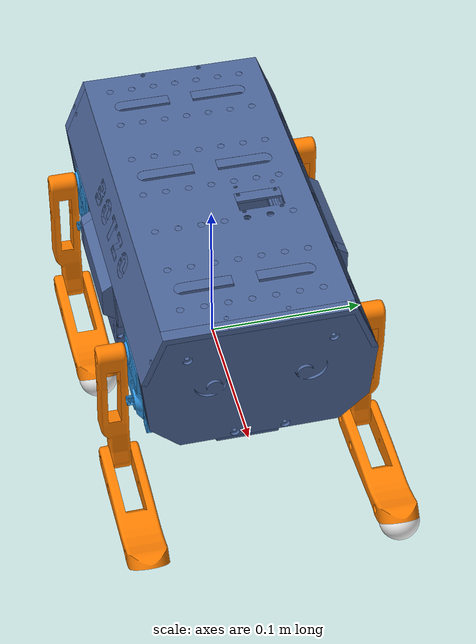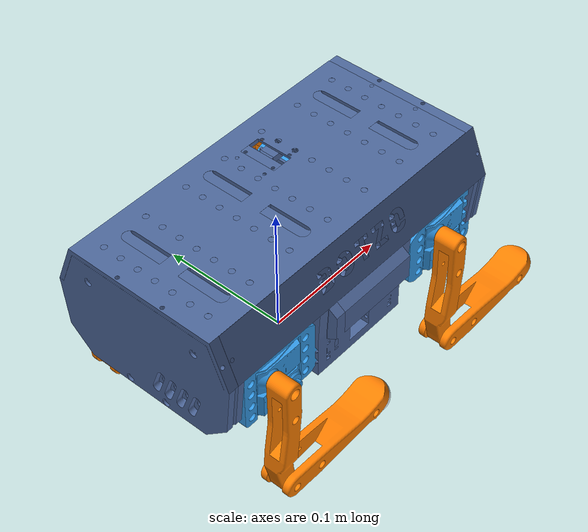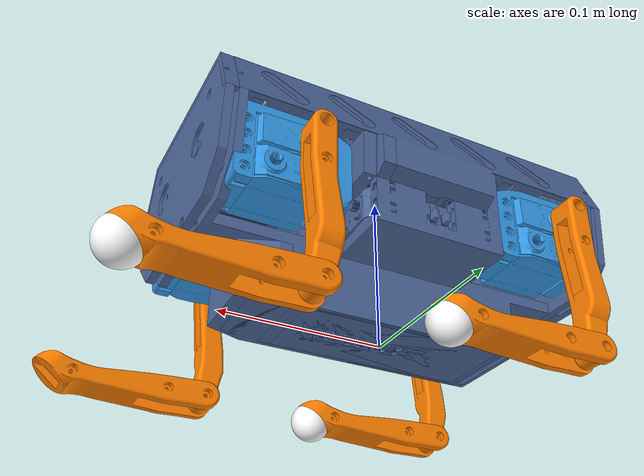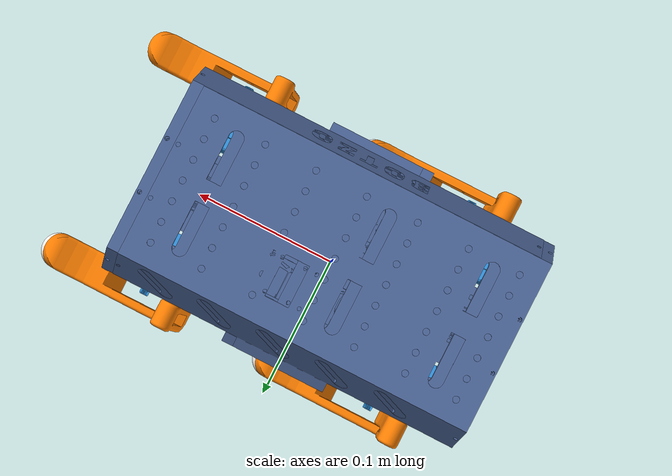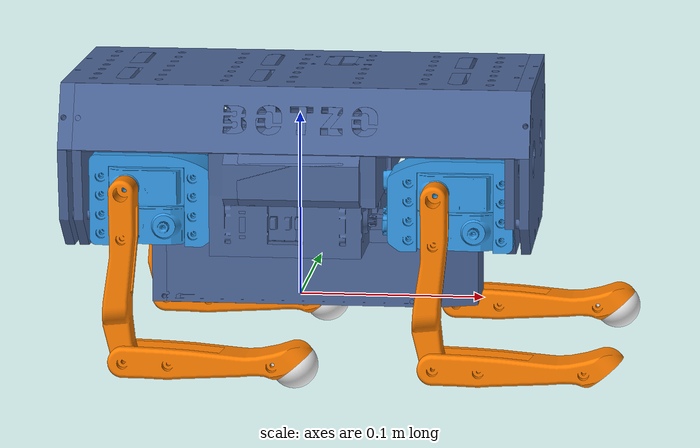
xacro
<?xml version="1.0" ?>
<robot name="BOTZO_URDF" xmlns:xacro="http://www.ros.org/wiki/xacro">

<xacro:include filename="materials.xacro" />
<xacro:include filename="BOTZO_URDF.trans" />
<xacro:include filename="BOTZO_URDF.gazebo" />
<link name="base">
  <inertial>
    <origin xyz="0.009375536855168636 2.60962330403209e-06 0.04112976914849421" rpy="0 0 0"/>
    <mass value="1.2167441545851616"/>
    <inertia ixx="0.001707" iyy="0.003036" izz="0.004645" ixy="-0.0" iyz="0.0" ixz="1e-06"/>
  </inertial>
  <visual>
    <origin xyz="0 0 0" rpy="0 0 0"/>
    <geometry>
      <mesh filename="../meshes/base.stl" scale="0.001 0.001 0.001"/>
    </geometry>
    <material name="body_material"/>
  </visual>
  <collision>
    <origin xyz="0 0 0" rpy="0 0 0"/>
    <geometry>
      <mesh filename="../meshes/base.stl" scale="0.001 0.001 0.001"/>
    </geometry>
  </collision>
</link>

<link name="battery_case">
  <inertial>
    <origin xyz="-0.04833257320080778 -0.021665747040542763 -0.013785580434187983" rpy="0 0 0"/>
    <mass value="0.5279583593554026"/>
    <inertia ixx="0.000303" iyy="0.001576" izz="0.001729" ixy="-0.0" iyz="0.0" ixz="6.3e-05"/>
  </inertial>
  <visual>
    <origin xyz="-0.060442 -0.021666 -0.035" rpy="0 0 0"/>
    <geometry>
      <mesh filename="../meshes/battery_case.stl" scale="0.001 0.001 0.001"/>
    </geometry>
    <material name="body_material"/>
  </visual>
  <collision>
    <origin xyz="-0.060442 -0.021666 -0.035" rpy="0 0 0"/>
    <geometry>
      <mesh filename="../meshes/battery_case.stl" scale="0.001 0.001 0.001"/>
    </geometry>
  </collision>
</link>

<link name="battery_lid">
  <inertial>
    <origin xyz="-0.06437847264634508 0.024434611722595645 -3.256760674206008e-08" rpy="0 0 0"/>
    <mass value="0.27701881208594975"/>
    <inertia ixx="6e-05" iyy="0.000405" izz="0.000464" ixy="-0.0" iyz="0.0" ixz="0.0"/>
  </inertial>
  <visual>
    <origin xyz="-0.063303 0.024621 -0.003002" rpy="0 0 0"/>
    <geometry>
      <mesh filename="../meshes/battery_lid.stl" scale="0.001 0.001 0.001"/>
    </geometry>
    <material name="body_material"/>
  </visual>
  <collision>
    <origin xyz="-0.063303 0.024621 -0.003002" rpy="0 0 0"/>
    <geometry>
      <mesh filename="../meshes/battery_lid.stl" scale="0.001 0.001 0.001"/>
    </geometry>
  </collision>
</link>

<link name="FL_hip_servo">
  <inertial>
    <origin xyz="-0.010978826420354432 0.024635560993822213 0.004999993099930565" rpy="0 0 0"/>
    <mass value="0.26173993659313904"/>
    <inertia ixx="4.6e-05" iyy="4.4e-05" izz="7.2e-05" ixy="0.0" iyz="-0.0" ixz="-0.0"/>
  </inertial>
  <visual>
    <origin xyz="-0.039798 0.0679 -0.0472" rpy="0 0 0"/>
    <geometry>
      <mesh filename="../meshes/FL_hip_servo.stl" scale="0.001 0.001 0.001"/>
    </geometry>
    <material name="body_material"/>
  </visual>
  <collision>
    <origin xyz="-0.039798 0.0679 -0.0472" rpy="0 0 0"/>
    <geometry>
      <mesh filename="../meshes/FL_hip_servo.stl" scale="0.001 0.001 0.001"/>
    </geometry>
  </collision>
</link>

<link name="BL_hip_servo">
  <inertial>
    <origin xyz="0.010978566432420041 0.024635553472565068 0.004999993096986129" rpy="0 0 0"/>
    <mass value="0.2617400478829367"/>
    <inertia ixx="4.6e-05" iyy="4.4e-05" izz="7.2e-05" ixy="-0.0" iyz="-0.0" ixz="-0.0"/>
  </inertial>
  <visual>
    <origin xyz="0.024303 0.0679 -0.0472" rpy="0 0 0"/>
    <geometry>
      <mesh filename="../meshes/BL_hip_servo.stl" scale="0.001 0.001 0.001"/>
    </geometry>
    <material name="body_material"/>
  </visual>
  <collision>
    <origin xyz="0.024303 0.0679 -0.0472" rpy="0 0 0"/>
    <geometry>
      <mesh filename="../meshes/BL_hip_servo.stl" scale="0.001 0.001 0.001"/>
    </geometry>
  </collision>
</link>

<link name="BR_hip_servo">
  <inertial>
    <origin xyz="0.010978566432483449 -0.02463554393590102 0.005000000088002207" rpy="0 0 0"/>
    <mass value="0.2617400478829346"/>
    <inertia ixx="4.6e-05" iyy="4.4e-05" izz="7.2e-05" ixy="0.0" iyz="0.0" ixz="-0.0"/>
  </inertial>
  <visual>
    <origin xyz="0.024303 -0.0679 -0.0472" rpy="0 0 0"/>
    <geometry>
      <mesh filename="../meshes/BR_hip_servo.stl" scale="0.001 0.001 0.001"/>
    </geometry>
    <material name="body_material"/>
  </visual>
  <collision>
    <origin xyz="0.024303 -0.0679 -0.0472" rpy="0 0 0"/>
    <geometry>
      <mesh filename="../meshes/BR_hip_servo.stl" scale="0.001 0.001 0.001"/>
    </geometry>
  </collision>
</link>

<link name="FR_hip_servo">
  <inertial>
    <origin xyz="-0.010978819400829183 -0.02463554393111611 0.005000000090946616" rpy="0 0 0"/>
    <mass value="0.26174004794177985"/>
    <inertia ixx="4.6e-05" iyy="4.4e-05" izz="7.2e-05" ixy="-0.0" iyz="0.0" ixz="-0.0"/>
  </inertial>
  <visual>
    <origin xyz="-0.039798 -0.0679 -0.0472" rpy="0 0 0"/>
    <geometry>
      <mesh filename="../meshes/FR_hip_servo.stl" scale="0.001 0.001 0.001"/>
    </geometry>
    <material name="body_material"/>
  </visual>
  <collision>
    <origin xyz="-0.039798 -0.0679 -0.0472" rpy="0 0 0"/>
    <geometry>
      <mesh filename="../meshes/FR_hip_servo.stl" scale="0.001 0.001 0.001"/>
    </geometry>
  </collision>
</link>

<link name="LH_HIP">
  <inertial>
    <origin xyz="-0.0033823271841275857 1.4796413910361794e-05 0.007872333848179133" rpy="0 0 0"/>
    <mass value="0.009507508379080121"/>
    <inertia ixx="1e-06" iyy="1e-06" izz="0.0" ixy="-0.0" iyz="-0.0" ixz="0.0"/>
  </inertial>
  <visual>
    <origin xyz="0.034903 -0.0531 -0.0522" rpy="0 0 0"/>
    <geometry>
      <mesh filename="../meshes/LH_HIP.stl" scale="0.001 0.001 0.001"/>
    </geometry>
    <material name="shoulder_material"/>
  </visual>
  <collision>
    <origin xyz="0.034903 -0.0531 -0.0522" rpy="0 0 0"/>
    <geometry>
      <mesh filename="../meshes/LH_HIP.stl" scale="0.001 0.001 0.001"/>
    </geometry>
  </collision>
</link>

<link name="RH_HIP">
  <inertial>
    <origin xyz="-0.0033823296605766523 -1.480449380279747e-05 0.00787237940155594" rpy="0 0 0"/>
    <mass value="0.009507457536661807"/>
    <inertia ixx="1e-06" iyy="1e-06" izz="0.0" ixy="0.0" iyz="0.0" ixz="0.0"/>
  </inertial>
  <visual>
    <origin xyz="0.034903 0.0531 -0.0522" rpy="0 0 0"/>
    <geometry>
      <mesh filename="../meshes/RH_HIP.stl" scale="0.001 0.001 0.001"/>
    </geometry>
    <material name="shoulder_material"/>
  </visual>
  <collision>
    <origin xyz="0.034903 0.0531 -0.0522" rpy="0 0 0"/>
    <geometry>
      <mesh filename="../meshes/RH_HIP.stl" scale="0.001 0.001 0.001"/>
    </geometry>
  </collision>
</link>

<link name="RF_HIP">
  <inertial>
    <origin xyz="0.003382077615074093 1.4787446472486199e-05 0.007872350264379872" rpy="0 0 0"/>
    <mass value="0.009507493907444358"/>
    <inertia ixx="1e-06" iyy="1e-06" izz="0.0" ixy="0.0" iyz="-0.0" ixz="-0.0"/>
  </inertial>
  <visual>
    <origin xyz="-0.050398 0.0531 -0.0522" rpy="0 0 0"/>
    <geometry>
      <mesh filename="../meshes/RF_HIP.stl" scale="0.001 0.001 0.001"/>
    </geometry>
    <material name="shoulder_material"/>
  </visual>
  <collision>
    <origin xyz="-0.050398 0.0531 -0.0522" rpy="0 0 0"/>
    <geometry>
      <mesh filename="../meshes/RF_HIP.stl" scale="0.001 0.001 0.001"/>
    </geometry>
  </collision>
</link>

<link name="LF_HIP">
  <inertial>
    <origin xyz="0.0033820809457219755 -1.45680062756115e-05 0.007871874279300785" rpy="0 0 0"/>
    <mass value="0.009507835913863746"/>
    <inertia ixx="1e-06" iyy="1e-06" izz="0.0" ixy="-0.0" iyz="0.0" ixz="-0.0"/>
  </inertial>
  <visual>
    <origin xyz="-0.050398 -0.0531 -0.0522" rpy="0 0 0"/>
    <geometry>
      <mesh filename="../meshes/LF_HIP.stl" scale="0.001 0.001 0.001"/>
    </geometry>
    <material name="shoulder_material"/>
  </visual>
  <collision>
    <origin xyz="-0.050398 -0.0531 -0.0522" rpy="0 0 0"/>
    <geometry>
      <mesh filename="../meshes/LF_HIP.stl" scale="0.001 0.001 0.001"/>
    </geometry>
  </collision>
</link>

<link name="FR_hip_holder">
  <inertial>
    <origin xyz="0.029560698455582325 -0.0006139250348962816 -0.005293910274418584" rpy="0 0 0"/>
    <mass value="0.2739065893365788"/>
    <inertia ixx="8.1e-05" iyy="0.000224" izz="0.000184" ixy="1e-06" iyz="-1e-06" ixz="-1.2e-05"/>
  </inertial>
  <visual>
    <origin xyz="-0.056398 -0.0531 -0.0722" rpy="0 0 0"/>
    <geometry>
      <mesh filename="../meshes/FR_hip_holder.stl" scale="0.001 0.001 0.001"/>
    </geometry>
    <material name="shoulder_material"/>
  </visual>
  <collision>
    <origin xyz="-0.056398 -0.0531 -0.0722" rpy="0 0 0"/>
    <geometry>
      <mesh filename="../meshes/FR_hip_holder.stl" scale="0.001 0.001 0.001"/>
    </geometry>
  </collision>
</link>

<link name="FL_hip_holder">
  <inertial>
    <origin xyz="0.029560702894754244 0.0006139344660216831 -0.005293914635593616" rpy="0 0 0"/>
    <mass value="0.2739065316373336"/>
    <inertia ixx="8.1e-05" iyy="0.000224" izz="0.000184" ixy="-1e-06" iyz="1e-06" ixz="-1.2e-05"/>
  </inertial>
  <visual>
    <origin xyz="-0.056398 0.0531 -0.0722" rpy="0 0 0"/>
    <geometry>
      <mesh filename="../meshes/FL_hip_holder.stl" scale="0.001 0.001 0.001"/>
    </geometry>
    <material name="shoulder_material"/>
  </visual>
  <collision>
    <origin xyz="-0.056398 0.0531 -0.0722" rpy="0 0 0"/>
    <geometry>
      <mesh filename="../meshes/FL_hip_holder.stl" scale="0.001 0.001 0.001"/>
    </geometry>
  </collision>
</link>

<link name="BR_hip_holder">
  <inertial>
    <origin xyz="-0.029567418713488176 -0.0006140698430923894 -0.005290300978496018" rpy="0 0 0"/>
    <mass value="0.2738404315973338"/>
    <inertia ixx="8.1e-05" iyy="0.000224" izz="0.000184" ixy="-1e-06" iyz="-1e-06" ixz="1.2e-05"/>
  </inertial>
  <visual>
    <origin xyz="0.040903 -0.0531 -0.0722" rpy="0 0 0"/>
    <geometry>
      <mesh filename="../meshes/BR_hip_holder.stl" scale="0.001 0.001 0.001"/>
    </geometry>
    <material name="shoulder_material"/>
  </visual>
  <collision>
    <origin xyz="0.040903 -0.0531 -0.0722" rpy="0 0 0"/>
    <geometry>
      <mesh filename="../meshes/BR_hip_holder.stl" scale="0.001 0.001 0.001"/>
    </geometry>
  </collision>
</link>

<link name="BL_hip_holder">
  <inertial>
    <origin xyz="-0.02956749620152093 0.0006140814047106841 -0.005290344095366009" rpy="0 0 0"/>
    <mass value="0.27383943853852916"/>
    <inertia ixx="8.1e-05" iyy="0.000224" izz="0.000184" ixy="1e-06" iyz="1e-06" ixz="1.2e-05"/>
  </inertial>
  <visual>
    <origin xyz="0.040903 0.0531 -0.0722" rpy="0 0 0"/>
    <geometry>
      <mesh filename="../meshes/BL_hip_holder.stl" scale="0.001 0.001 0.001"/>
    </geometry>
    <material name="shoulder_material"/>
  </visual>
  <collision>
    <origin xyz="0.040903 0.0531 -0.0722" rpy="0 0 0"/>
    <geometry>
      <mesh filename="../meshes/BL_hip_holder.stl" scale="0.001 0.001 0.001"/>
    </geometry>
  </collision>
</link>

<link name="BL_femur_servo">
  <inertial>
    <origin xyz="-0.024964370616050904 0.010978365390125422 0.004999649993067221" rpy="0 0 0"/>
    <mass value="0.2617400479417799"/>
    <inertia ixx="4.4e-05" iyy="4.6e-05" izz="7.2e-05" ixy="-0.0" iyz="0.0" ixz="-0.0"/>
  </inertial>
  <visual>
    <origin xyz="0.049276 0.0613 -0.066121" rpy="0 0 0"/>
    <geometry>
      <mesh filename="../meshes/BL_femur_servo.stl" scale="0.001 0.001 0.001"/>
    </geometry>
    <material name="shoulder_material"/>
  </visual>
  <collision>
    <origin xyz="0.049276 0.0613 -0.066121" rpy="0 0 0"/>
    <geometry>
      <mesh filename="../meshes/BL_femur_servo.stl" scale="0.001 0.001 0.001"/>
    </geometry>
  </collision>
</link>

<link name="BL_tibia_servo">
  <inertial>
    <origin xyz="-0.02463534146393219 0.010978408940392835 0.0049996411984006145" rpy="0 0 0"/>
    <mass value="0.26173858999953525"/>
    <inertia ixx="4.4e-05" iyy="4.6e-05" izz="7.2e-05" ixy="0.0" iyz="-0.0" ixz="-0.0"/>
  </inertial>
  <visual>
    <origin xyz="0.049276 0.0613 -0.045621" rpy="0 0 0"/>
    <geometry>
      <mesh filename="../meshes/BL_tibia_servo.stl" scale="0.001 0.001 0.001"/>
    </geometry>
    <material name="shoulder_material"/>
  </visual>
  <collision>
    <origin xyz="0.049276 0.0613 -0.045621" rpy="0 0 0"/>
    <geometry>
      <mesh filename="../meshes/BL_tibia_servo.stl" scale="0.001 0.001 0.001"/>
    </geometry>
  </collision>
</link>

<link name="BR_femur_servo">
  <inertial>
    <origin xyz="-0.024964370616009382 -0.010978355853619524 0.004999656984075548" rpy="0 0 0"/>
    <mass value="0.26174004794177985"/>
    <inertia ixx="4.4e-05" iyy="4.6e-05" izz="7.2e-05" ixy="0.0" iyz="-0.0" ixz="-0.0"/>
  </inertial>
  <visual>
    <origin xyz="0.049276 -0.0613 -0.066121" rpy="0 0 0"/>
    <geometry>
      <mesh filename="../meshes/BR_femur_servo.stl" scale="0.001 0.001 0.001"/>
    </geometry>
    <material name="shoulder_material"/>
  </visual>
  <collision>
    <origin xyz="0.049276 -0.0613 -0.066121" rpy="0 0 0"/>
    <geometry>
      <mesh filename="../meshes/BR_femur_servo.stl" scale="0.001 0.001 0.001"/>
    </geometry>
  </collision>
</link>

<link name="BR_tibia_servo">
  <inertial>
    <origin xyz="-0.0246353414638866 -0.010978399403886119 0.004999648189409005" rpy="0 0 0"/>
    <mass value="0.2617385899995351"/>
    <inertia ixx="4.4e-05" iyy="4.6e-05" izz="7.2e-05" ixy="-0.0" iyz="0.0" ixz="-0.0"/>
  </inertial>
  <visual>
    <origin xyz="0.049276 -0.0613 -0.045621" rpy="0 0 0"/>
    <geometry>
      <mesh filename="../meshes/BR_tibia_servo.stl" scale="0.001 0.001 0.001"/>
    </geometry>
    <material name="shoulder_material"/>
  </visual>
  <collision>
    <origin xyz="0.049276 -0.0613 -0.045621" rpy="0 0 0"/>
    <geometry>
      <mesh filename="../meshes/BR_tibia_servo.stl" scale="0.001 0.001 0.001"/>
    </geometry>
  </collision>
</link>

<link name="FL_femur_servo">
  <inertial>
    <origin xyz="0.024635236782420036 0.010978365390344982 0.004999645985760567" rpy="0 0 0"/>
    <mass value="0.2617400479417799"/>
    <inertia ixx="4.4e-05" iyy="4.6e-05" izz="7.2e-05" ixy="-0.0" iyz="0.0" ixz="-0.0"/>
  </inertial>
  <visual>
    <origin xyz="-0.064771 0.0613 -0.066121" rpy="0 0 0"/>
    <geometry>
      <mesh filename="../meshes/FL_femur_servo.stl" scale="0.001 0.001 0.001"/>
    </geometry>
    <material name="shoulder_material"/>
  </visual>
  <collision>
    <origin xyz="-0.064771 0.0613 -0.066121" rpy="0 0 0"/>
    <geometry>
      <mesh filename="../meshes/FL_femur_servo.stl" scale="0.001 0.001 0.001"/>
    </geometry>
  </collision>
</link>

<link name="FL_tibia_servo">
  <inertial>
    <origin xyz="0.024964033753852463 0.010978390052187453 0.004999641006598471" rpy="0 0 0"/>
    <mass value="0.261739222329772"/>
    <inertia ixx="4.4e-05" iyy="4.6e-05" izz="7.2e-05" ixy="0.0" iyz="-0.0" ixz="0.0"/>
  </inertial>
  <visual>
    <origin xyz="-0.064771 0.0613 -0.045621" rpy="0 0 0"/>
    <geometry>
      <mesh filename="../meshes/FL_tibia_servo.stl" scale="0.001 0.001 0.001"/>
    </geometry>
    <material name="shoulder_material"/>
  </visual>
  <collision>
    <origin xyz="-0.064771 0.0613 -0.045621" rpy="0 0 0"/>
    <geometry>
      <mesh filename="../meshes/FL_tibia_servo.stl" scale="0.001 0.001 0.001"/>
    </geometry>
  </collision>
</link>

<link name="FR_femur_servo">
  <inertial>
    <origin xyz="0.02463523678246525 -0.010978355853581062 0.004999652976776514" rpy="0 0 0"/>
    <mass value="0.26174004794177985"/>
    <inertia ixx="4.4e-05" iyy="4.6e-05" izz="7.2e-05" ixy="0.0" iyz="-0.0" ixz="-0.0"/>
  </inertial>
  <visual>
    <origin xyz="-0.064771 -0.0613 -0.066121" rpy="0 0 0"/>
    <geometry>
      <mesh filename="../meshes/FR_femur_servo.stl" scale="0.001 0.001 0.001"/>
    </geometry>
    <material name="shoulder_material"/>
  </visual>
  <collision>
    <origin xyz="-0.064771 -0.0613 -0.066121" rpy="0 0 0"/>
    <geometry>
      <mesh filename="../meshes/FR_femur_servo.stl" scale="0.001 0.001 0.001"/>
    </geometry>
  </collision>
</link>

<link name="FR_tibia_servo">
  <inertial>
    <origin xyz="0.024964033753897955 -0.010978380515422506 0.004999647997614584" rpy="0 0 0"/>
    <mass value="0.2617392223297719"/>
    <inertia ixx="4.4e-05" iyy="4.6e-05" izz="7.2e-05" ixy="-0.0" iyz="0.0" ixz="0.0"/>
  </inertial>
  <visual>
    <origin xyz="-0.064771 -0.0613 -0.045621" rpy="0 0 0"/>
    <geometry>
      <mesh filename="../meshes/FR_tibia_servo.stl" scale="0.001 0.001 0.001"/>
    </geometry>
    <material name="shoulder_material"/>
  </visual>
  <collision>
    <origin xyz="-0.064771 -0.0613 -0.045621" rpy="0 0 0"/>
    <geometry>
      <mesh filename="../meshes/FR_tibia_servo.stl" scale="0.001 0.001 0.001"/>
    </geometry>
  </collision>
</link>

<link name="imu_link">
  <inertial>
    <origin xyz="3.683803719701888e-07 7.62933245468389e-09 0.00049999999999846" rpy="0 0 0"/>
    <mass value="0.0026375999999999986"/>
    <inertia ixx="0.0" iyy="0.0" izz="0.0" ixy="-0.0" iyz="0.0" ixz="0.0"/>
  </inertial>
  <visual>
    <origin xyz="-0.003497 -0.0 -0.0395" rpy="0 0 0"/>
    <geometry>
      <mesh filename="../meshes/imu_link.stl" scale="0.001 0.001 0.001"/>
    </geometry>
    <material name="body_material"/>
  </visual>
  <collision>
    <origin xyz="-0.003497 -0.0 -0.0395" rpy="0 0 0"/>
    <geometry>
      <mesh filename="../meshes/imu_link.stl" scale="0.001 0.001 0.001"/>
    </geometry>
  </collision>
</link>

<link name="LF_THIGH">
  <inertial>
    <origin xyz="-0.0015487128805810324 0.00818635524879402 -0.046699032368199875" rpy="0 0 0"/>
    <mass value="0.12321527244392107"/>
    <inertia ixx="0.000112" iyy="0.000111" izz="6e-06" ixy="-0.0" iyz="-2e-06" ixz="-4e-06"/>
  </inertial>
  <visual>
    <origin xyz="-0.079571 -0.0719 -0.071121" rpy="0 0 0"/>
    <geometry>
      <mesh filename="../meshes/LF_THIGH.stl" scale="0.001 0.001 0.001"/>
    </geometry>
    <material name="legs_material"/>
  </visual>
  <collision>
    <origin xyz="-0.079571 -0.0719 -0.071121" rpy="0 0 0"/>
    <geometry>
      <mesh filename="../meshes/LF_THIGH.stl" scale="0.001 0.001 0.001"/>
    </geometry>
  </collision>
</link>

<link name="RF_THIGH">
  <inertial>
    <origin xyz="-0.001548689561858288 -0.00818632723111587 -0.04669919641913074" rpy="0 0 0"/>
    <mass value="0.1232160348472257"/>
    <inertia ixx="0.000112" iyy="0.000111" izz="6e-06" ixy="0.0" iyz="2e-06" ixz="-4e-06"/>
  </inertial>
  <visual>
    <origin xyz="-0.079571 0.0719 -0.071121" rpy="0 0 0"/>
    <geometry>
      <mesh filename="../meshes/RF_THIGH.stl" scale="0.001 0.001 0.001"/>
    </geometry>
    <material name="legs_material"/>
  </visual>
  <collision>
    <origin xyz="-0.079571 0.0719 -0.071121" rpy="0 0 0"/>
    <geometry>
      <mesh filename="../meshes/RF_THIGH.stl" scale="0.001 0.001 0.001"/>
    </geometry>
  </collision>
</link>

<link name="RH_THIGH">
  <inertial>
    <origin xyz="-0.0015481950136371492 -0.008186327231335055 -0.046697922551068013" rpy="0 0 0"/>
    <mass value="0.1232160348472388"/>
    <inertia ixx="0.000112" iyy="0.000111" izz="6e-06" ixy="0.0" iyz="2e-06" ixz="-4e-06"/>
  </inertial>
  <visual>
    <origin xyz="0.084076 0.0719 -0.071121" rpy="0 0 0"/>
    <geometry>
      <mesh filename="../meshes/RH_THIGH.stl" scale="0.001 0.001 0.001"/>
    </geometry>
    <material name="legs_material"/>
  </visual>
  <collision>
    <origin xyz="0.084076 0.0719 -0.071121" rpy="0 0 0"/>
    <geometry>
      <mesh filename="../meshes/RH_THIGH.stl" scale="0.001 0.001 0.001"/>
    </geometry>
  </collision>
</link>

<link name="LH_THIGH">
  <inertial>
    <origin xyz="-0.0015481437644144225 0.008186355248752455 -0.0466975963630347" rpy="0 0 0"/>
    <mass value="0.12321527244393736"/>
    <inertia ixx="0.000113" iyy="0.000111" izz="6e-06" ixy="-0.0" iyz="-2e-06" ixz="-4e-06"/>
  </inertial>
  <visual>
    <origin xyz="0.084076 -0.0719 -0.071121" rpy="0 0 0"/>
    <geometry>
      <mesh filename="../meshes/LH_THIGH.stl" scale="0.001 0.001 0.001"/>
    </geometry>
    <material name="legs_material"/>
  </visual>
  <collision>
    <origin xyz="0.084076 -0.0719 -0.071121" rpy="0 0 0"/>
    <geometry>
      <mesh filename="../meshes/LH_THIGH.stl" scale="0.001 0.001 0.001"/>
    </geometry>
  </collision>
</link>

<link name="plaque_left">
  <inertial>
    <origin xyz="0.014393569624221867 -0.02888533887184032 0.007166851005990391" rpy="0 0 0"/>
    <mass value="0.2650412288141514"/>
    <inertia ixx="0.000113" iyy="0.000207" izz="0.000285" ixy="0.0" iyz="8e-06" ixz="0.0"/>
  </inertial>
  <visual>
    <origin xyz="0.00664 0.018475 -0.0624" rpy="0 0 0"/>
    <geometry>
      <mesh filename="../meshes/plaque_left.stl" scale="0.001 0.001 0.001"/>
    </geometry>
    <material name="body_material"/>
  </visual>
  <collision>
    <origin xyz="0.00664 0.018475 -0.0624" rpy="0 0 0"/>
    <geometry>
      <mesh filename="../meshes/plaque_left.stl" scale="0.001 0.001 0.001"/>
    </geometry>
  </collision>
</link>

<link name="plaque_right">
  <inertial>
    <origin xyz="0.01437999212800966 0.028910459753787983 0.007144962390201057" rpy="0 0 0"/>
    <mass value="0.2662946576400111"/>
    <inertia ixx="0.000113" iyy="0.000208" izz="0.000286" ixy="-0.0" iyz="-8e-06" ixz="-0.0"/>
  </inertial>
  <visual>
    <origin xyz="0.00664 -0.018475 -0.0624" rpy="0 0 0"/>
    <geometry>
      <mesh filename="../meshes/plaque_right.stl" scale="0.001 0.001 0.001"/>
    </geometry>
    <material name="body_material"/>
  </visual>
  <collision>
    <origin xyz="0.00664 -0.018475 -0.0624" rpy="0 0 0"/>
    <geometry>
      <mesh filename="../meshes/plaque_right.stl" scale="0.001 0.001 0.001"/>
    </geometry>
  </collision>
</link>

<link name="rear">
  <inertial>
    <origin xyz="-0.002467088490467728 0.01679061879749418 0.03991220570023193" rpy="0 0 0"/>
    <mass value="0.4112027073712677"/>
    <inertia ixx="0.000826" iyy="0.000229" izz="0.000599" ixy="0.0" iyz="1.1e-05" ixz="0.0"/>
  </inertial>
  <visual>
    <origin xyz="0.107742 0.015621 -0.0385" rpy="0 0 0"/>
    <geometry>
      <mesh filename="../meshes/rear.stl" scale="0.001 0.001 0.001"/>
    </geometry>
    <material name="body_material"/>
  </visual>
  <collision>
    <origin xyz="0.107742 0.015621 -0.0385" rpy="0 0 0"/>
    <geometry>
      <mesh filename="../meshes/rear.stl" scale="0.001 0.001 0.001"/>
    </geometry>
  </collision>
</link>

<link name="face">
  <inertial>
    <origin xyz="0.0024414347125266272 0.015621074926330704 0.03876987732727693" rpy="0 0 0"/>
    <mass value="0.42237332709158726"/>
    <inertia ixx="0.000844" iyy="0.000239" izz="0.000607" ixy="0.0" iyz="-0.0" ixz="-0.0"/>
  </inertial>
  <visual>
    <origin xyz="-0.123238 0.015621 -0.0385" rpy="0 0 0"/>
    <geometry>
      <mesh filename="../meshes/face.stl" scale="0.001 0.001 0.001"/>
    </geometry>
    <material name="body_material"/>
  </visual>
  <collision>
    <origin xyz="-0.123238 0.015621 -0.0385" rpy="0 0 0"/>
    <geometry>
      <mesh filename="../meshes/face.stl" scale="0.001 0.001 0.001"/>
    </geometry>
  </collision>
</link>

<link name="internal_infra">
  <inertial>
    <origin xyz="0.11530993699758461 0.044680485707850826 -0.007028415436090132" rpy="0 0 0"/>
    <mass value="0.29688366953182493"/>
    <inertia ixx="0.000331" iyy="0.001813" izz="0.002141" ixy="0.0" iyz="1e-06" ixz="0.0"/>
  </inertial>
  <visual>
    <origin xyz="0.107742 0.043961 -0.105071" rpy="0 0 0"/>
    <geometry>
      <mesh filename="../meshes/internal_infra.stl" scale="0.001 0.001 0.001"/>
    </geometry>
    <material name="body_material"/>
  </visual>
  <collision>
    <origin xyz="0.107742 0.043961 -0.105071" rpy="0 0 0"/>
    <geometry>
      <mesh filename="../meshes/internal_infra.stl" scale="0.001 0.001 0.001"/>
    </geometry>
  </collision>
</link>

<link name="top">
  <inertial>
    <origin xyz="0.11761953860342345 -0.06398448625003379 0.011181156410446563" rpy="0 0 0"/>
    <mass value="1.1154165815498167"/>
    <inertia ixx="0.002509" iyy="0.005671" izz="0.007973" ixy="3.8e-05" iyz="-2.2e-05" ixz="-3e-06"/>
  </inertial>
  <visual>
    <origin xyz="0.110242 -0.0616 -0.105415" rpy="0 0 0"/>
    <geometry>
      <mesh filename="../meshes/top.stl" scale="0.001 0.001 0.001"/>
    </geometry>
    <material name="body_material"/>
  </visual>
  <collision>
    <origin xyz="0.110242 -0.0616 -0.105415" rpy="0 0 0"/>
    <geometry>
      <mesh filename="../meshes/top.stl" scale="0.001 0.001 0.001"/>
    </geometry>
  </collision>
</link>

<link name="RF_SHANK">
  <inertial>
    <origin xyz="-1.3426662960558389e-05 0.006598316213941233 -0.04761054175330333" rpy="0 0 0"/>
    <mass value="0.16449882147273556"/>
    <inertia ixx="0.000143" iyy="0.000134" izz="1.5e-05" ixy="-0.0" iyz="0.0" ixz="3e-06"/>
  </inertial>
  <visual>
    <origin xyz="-0.079571 0.0849 0.019458" rpy="0 0 0"/>
    <geometry>
      <mesh filename="../meshes/RF_SHANK.stl" scale="0.001 0.001 0.001"/>
    </geometry>
    <material name="legs_material"/>
  </visual>
  <collision>
    <origin xyz="-0.079571 0.0849 0.019458" rpy="0 0 0"/>
    <geometry>
      <mesh filename="../meshes/RF_SHANK.stl" scale="0.001 0.001 0.001"/>
    </geometry>
  </collision>
</link>

<link name="RH_SHANK">
  <inertial>
    <origin xyz="-1.3034061444691658e-05 0.00659831600262395 -0.04761053774599561" rpy="0 0 0"/>
    <mass value="0.16449882147273576"/>
    <inertia ixx="0.000143" iyy="0.000134" izz="1.5e-05" ixy="-0.0" iyz="0.0" ixz="3e-06"/>
  </inertial>
  <visual>
    <origin xyz="0.084076 0.0849 0.019458" rpy="0 0 0"/>
    <geometry>
      <mesh filename="../meshes/RH_SHANK.stl" scale="0.001 0.001 0.001"/>
    </geometry>
    <material name="legs_material"/>
  </visual>
  <collision>
    <origin xyz="0.084076 0.0849 0.019458" rpy="0 0 0"/>
    <geometry>
      <mesh filename="../meshes/RH_SHANK.stl" scale="0.001 0.001 0.001"/>
    </geometry>
  </collision>
</link>

<link name="LF_SHANK">
  <inertial>
    <origin xyz="-1.3423486317318267e-05 -0.006598286312571797 -0.047610458897788074" rpy="0 0 0"/>
    <mass value="0.16449852643699206"/>
    <inertia ixx="0.000143" iyy="0.000134" izz="1.5e-05" ixy="0.0" iyz="-0.0" ixz="3e-06"/>
  </inertial>
  <visual>
    <origin xyz="-0.079571 -0.0849 0.019458" rpy="0 0 0"/>
    <geometry>
      <mesh filename="../meshes/LF_SHANK.stl" scale="0.001 0.001 0.001"/>
    </geometry>
    <material name="legs_material"/>
  </visual>
  <collision>
    <origin xyz="-0.079571 -0.0849 0.019458" rpy="0 0 0"/>
    <geometry>
      <mesh filename="../meshes/LF_SHANK.stl" scale="0.001 0.001 0.001"/>
    </geometry>
  </collision>
</link>

<link name="LH_SHANK">
  <inertial>
    <origin xyz="-1.3030884784909214e-05 -0.006598286101516498 -0.0476104548904905" rpy="0 0 0"/>
    <mass value="0.164498526436992"/>
    <inertia ixx="0.000143" iyy="0.000134" izz="1.5e-05" ixy="0.0" iyz="-0.0" ixz="3e-06"/>
  </inertial>
  <visual>
    <origin xyz="0.084076 -0.0849 0.019458" rpy="0 0 0"/>
    <geometry>
      <mesh filename="../meshes/LH_SHANK.stl" scale="0.001 0.001 0.001"/>
    </geometry>
    <material name="legs_material"/>
  </visual>
  <collision>
    <origin xyz="0.084076 -0.0849 0.019458" rpy="0 0 0"/>
    <geometry>
      <mesh filename="../meshes/LH_SHANK.stl" scale="0.001 0.001 0.001"/>
    </geometry>
  </collision>
</link>

<link name="LH_FOOT">
  <inertial>
    <origin xyz="-0.0014046612966930744 -1.2336747509666957e-07 0.0003373725865424837" rpy="0 0 0"/>
    <mass value="0.034348407017534784"/>
    <inertia ixx="3e-06" iyy="2e-06" izz="2e-06" ixy="0.0" iyz="0.0" ixz="0.0"/>
  </inertial>
  <visual>
    <origin xyz="0.085301 -0.078314 0.109364" rpy="0 0 0"/>
    <geometry>
      <mesh filename="../meshes/LH_FOOT.stl" scale="0.001 0.001 0.001"/>
    </geometry>
    <material name="foot_material"/>
  </visual>
  <collision>
    <origin xyz="0.085301 -0.078314 0.109364" rpy="0 0 0"/>
    <geometry>
      <mesh filename="../meshes/LH_FOOT.stl" scale="0.001 0.001 0.001"/>
    </geometry>
  </collision>
</link>

<link name="LF_FOOT">
  <inertial>
    <origin xyz="-0.0014050538982297855 -1.233674315620492e-07 0.00033736857924518415" rpy="0 0 0"/>
    <mass value="0.034348407017534784"/>
    <inertia ixx="3e-06" iyy="2e-06" izz="2e-06" ixy="0.0" iyz="0.0" ixz="0.0"/>
  </inertial>
  <visual>
    <origin xyz="-0.078346 -0.078314 0.109364" rpy="0 0 0"/>
    <geometry>
      <mesh filename="../meshes/LF_FOOT.stl" scale="0.001 0.001 0.001"/>
    </geometry>
    <material name="foot_material"/>
  </visual>
  <collision>
    <origin xyz="-0.078346 -0.078314 0.109364" rpy="0 0 0"/>
    <geometry>
      <mesh filename="../meshes/LF_FOOT.stl" scale="0.001 0.001 0.001"/>
    </geometry>
  </collision>
</link>

<link name="RH_FOOT">
  <inertial>
    <origin xyz="-0.001404652945676682 6.995909082596619e-08 0.00033746716519360287" rpy="0 0 0"/>
    <mass value="0.03434778325699268"/>
    <inertia ixx="3e-06" iyy="2e-06" izz="2e-06" ixy="-0.0" iyz="-0.0" ixz="0.0"/>
  </inertial>
  <visual>
    <origin xyz="0.085301 0.078314 0.109364" rpy="0 0 0"/>
    <geometry>
      <mesh filename="../meshes/RH_FOOT.stl" scale="0.001 0.001 0.001"/>
    </geometry>
    <material name="foot_material"/>
  </visual>
  <collision>
    <origin xyz="0.085301 0.078314 0.109364" rpy="0 0 0"/>
    <geometry>
      <mesh filename="../meshes/RH_FOOT.stl" scale="0.001 0.001 0.001"/>
    </geometry>
  </collision>
</link>

<link name="RF_FOOT">
  <inertial>
    <origin xyz="-0.0014050455471885936 6.995931020603585e-08 0.00033746315788578396" rpy="0 0 0"/>
    <mass value="0.03434778325699268"/>
    <inertia ixx="3e-06" iyy="2e-06" izz="2e-06" ixy="-0.0" iyz="-0.0" ixz="0.0"/>
  </inertial>
  <visual>
    <origin xyz="-0.078346 0.078314 0.109364" rpy="0 0 0"/>
    <geometry>
      <mesh filename="../meshes/RF_FOOT.stl" scale="0.001 0.001 0.001"/>
    </geometry>
    <material name="foot_material"/>
  </visual>
  <collision>
    <origin xyz="-0.078346 0.078314 0.109364" rpy="0 0 0"/>
    <geometry>
      <mesh filename="../meshes/RF_FOOT.stl" scale="0.001 0.001 0.001"/>
    </geometry>
  </collision>
</link>

<joint name="Rigid 1" type="fixed">
  <origin xyz="0.060442 0.021666 0.035" rpy="0 0 0"/>
  <parent link="base"/>
  <child link="battery_case"/>
</joint>

<joint name="Rigid 2" type="fixed">
  <origin xyz="0.002861 -0.046287 -0.031998" rpy="0 0 0"/>
  <parent link="battery_case"/>
  <child link="battery_lid"/>
</joint>

<joint name="Rigid 3" type="fixed">
  <origin xyz="0.039798 -0.0679 0.0472" rpy="0 0 0"/>
  <parent link="base"/>
  <child link="FL_hip_servo"/>
</joint>

<joint name="Rigid 4" type="fixed">
  <origin xyz="-0.024303 -0.0679 0.0472" rpy="0 0 0"/>
  <parent link="base"/>
  <child link="BL_hip_servo"/>
</joint>

<joint name="Rigid 5" type="fixed">
  <origin xyz="-0.024303 0.0679 0.0472" rpy="0 0 0"/>
  <parent link="base"/>
  <child link="BR_hip_servo"/>
</joint>

<joint name="Rigid 6" type="fixed">
  <origin xyz="0.039798 0.0679 0.0472" rpy="0 0 0"/>
  <parent link="base"/>
  <child link="FR_hip_servo"/>
</joint>

<joint name="LH_HAA" type="continuous">
  <origin xyz="-0.0106 -0.0148 0.005" rpy="0 0 0"/>
  <parent link="BR_hip_servo"/>
  <child link="LH_HIP"/>
  <axis xyz="1.0 0.0 0.0"/>
</joint>

<joint name="RH_HAA" type="continuous">
  <origin xyz="-0.0106 0.0148 0.005" rpy="0 0 0"/>
  <parent link="BL_hip_servo"/>
  <child link="RH_HIP"/>
  <axis xyz="-1.0 -0.0 -0.0"/>
</joint>

<joint name="RF_HAA" type="continuous">
  <origin xyz="0.0106 0.0148 0.005" rpy="0 0 0"/>
  <parent link="FL_hip_servo"/>
  <child link="RF_HIP"/>
  <axis xyz="-1.0 -0.0 -0.0"/>
</joint>

<joint name="LF_HAA" type="continuous">
  <origin xyz="0.0106 -0.0148 0.005" rpy="0 0 0"/>
  <parent link="FR_hip_servo"/>
  <child link="LF_HIP"/>
  <axis xyz="1.0 -0.0 0.0"/>
</joint>

<joint name="Rigid 11" type="fixed">
  <origin xyz="0.006 0.0 0.02" rpy="0 0 0"/>
  <parent link="LF_HIP"/>
  <child link="FR_hip_holder"/>
</joint>

<joint name="Rigid 12" type="fixed">
  <origin xyz="0.006 0.0 0.02" rpy="0 0 0"/>
  <parent link="RF_HIP"/>
  <child link="FL_hip_holder"/>
</joint>

<joint name="Rigid 13" type="fixed">
  <origin xyz="-0.006 0.0 0.02" rpy="0 0 0"/>
  <parent link="LH_HIP"/>
  <child link="BR_hip_holder"/>
</joint>

<joint name="Rigid 14" type="fixed">
  <origin xyz="-0.006 0.0 0.02" rpy="0 0 0"/>
  <parent link="RH_HIP"/>
  <child link="BL_hip_holder"/>
</joint>

<joint name="Rigid 15" type="fixed">
  <origin xyz="-0.008373 -0.0082 -0.006079" rpy="0 0 0"/>
  <parent link="BL_hip_holder"/>
  <child link="BL_femur_servo"/>
</joint>

<joint name="Rigid 16" type="fixed">
  <origin xyz="-0.008373 -0.0082 -0.026579" rpy="0 0 0"/>
  <parent link="BL_hip_holder"/>
  <child link="BL_tibia_servo"/>
</joint>

<joint name="Rigid 17" type="fixed">
  <origin xyz="-0.008373 0.0082 -0.006079" rpy="0 0 0"/>
  <parent link="BR_hip_holder"/>
  <child link="BR_femur_servo"/>
</joint>

<joint name="Rigid 18" type="fixed">
  <origin xyz="-0.008373 0.0082 -0.026579" rpy="0 0 0"/>
  <parent link="BR_hip_holder"/>
  <child link="BR_tibia_servo"/>
</joint>

<joint name="Rigid 19" type="fixed">
  <origin xyz="0.008373 -0.0082 -0.006079" rpy="0 0 0"/>
  <parent link="FL_hip_holder"/>
  <child link="FL_femur_servo"/>
</joint>

<joint name="Rigid 20" type="fixed">
  <origin xyz="0.008373 -0.0082 -0.026579" rpy="0 0 0"/>
  <parent link="FL_hip_holder"/>
  <child link="FL_tibia_servo"/>
</joint>

<joint name="Rigid 21" type="fixed">
  <origin xyz="0.008373 0.0082 -0.006079" rpy="0 0 0"/>
  <parent link="FR_hip_holder"/>
  <child link="FR_femur_servo"/>
</joint>

<joint name="Rigid 22" type="fixed">
  <origin xyz="0.008373 0.0082 -0.026579" rpy="0 0 0"/>
  <parent link="FR_hip_holder"/>
  <child link="FR_tibia_servo"/>
</joint>

<joint name="imu_joint" type="fixed">
  <origin xyz="0.003497 0.0 0.0395" rpy="0 0 0"/>
  <parent link="base"/>
  <child link="imu_link"/>
</joint>

<joint name="LF_HFE" type="continuous">
  <origin xyz="0.0148 0.0106 0.005" rpy="0 0 0"/>
  <parent link="FR_femur_servo"/>
  <child link="LF_THIGH"/>
  <axis xyz="-0.0 1.0 -0.0"/>
</joint>

<joint name="RF_HFE" type="continuous">
  <origin xyz="0.0148 -0.0106 0.005" rpy="0 0 0"/>
  <parent link="FL_femur_servo"/>
  <child link="RF_THIGH"/>
  <axis xyz="-0.0 1.0 0.0"/>
</joint>

<joint name="RH_HFE" type="continuous">
  <origin xyz="-0.0348 -0.0106 0.005" rpy="0 0 0"/>
  <parent link="BL_femur_servo"/>
  <child link="RH_THIGH"/>
  <axis xyz="-0.0 1.0 0.0"/>
</joint>

<joint name="LH_HFE" type="continuous">
  <origin xyz="-0.0348 0.0106 0.005" rpy="0 0 0"/>
  <parent link="BR_femur_servo"/>
  <child link="LH_THIGH"/>
  <axis xyz="-0.0 1.0 -0.0"/>
</joint>

<joint name="Rigid 36" type="fixed">
  <origin xyz="-0.00664 -0.018475 0.0624" rpy="0 0 0"/>
  <parent link="base"/>
  <child link="plaque_left"/>
</joint>

<joint name="Rigid 37" type="fixed">
  <origin xyz="-0.00664 0.018475 0.0624" rpy="0 0 0"/>
  <parent link="base"/>
  <child link="plaque_right"/>
</joint>

<joint name="Rigid 38" type="fixed">
  <origin xyz="-0.107742 -0.015621 0.0385" rpy="0 0 0"/>
  <parent link="base"/>
  <child link="rear"/>
</joint>

<joint name="Rigid 39" type="fixed">
  <origin xyz="0.123238 -0.015621 0.0385" rpy="0 0 0"/>
  <parent link="base"/>
  <child link="face"/>
</joint>

<joint name="Rigid 40" type="fixed">
  <origin xyz="0.0 -0.02834 0.066571" rpy="0 0 0"/>
  <parent link="rear"/>
  <child link="internal_infra"/>
</joint>

<joint name="Rigid 41" type="fixed">
  <origin xyz="-0.0025 0.077221 0.066915" rpy="0 0 0"/>
  <parent link="rear"/>
  <child link="top"/>
</joint>

<joint name="RF_KFE" type="continuous">
  <origin xyz="0.0 -0.013 -0.090579" rpy="0 0 0"/>
  <parent link="RF_THIGH"/>
  <child link="RF_SHANK"/>
  <axis xyz="-0.0 1.0 0.0"/>
</joint>

<joint name="RH_KFE" type="continuous">
  <origin xyz="0.0 -0.013 -0.090579" rpy="0 0 0"/>
  <parent link="RH_THIGH"/>
  <child link="RH_SHANK"/>
  <axis xyz="-0.0 1.0 0.0"/>
</joint>

<joint name="LF_KFE" type="continuous">
  <origin xyz="0.0 0.013 -0.090579" rpy="0 0 0"/>
  <parent link="LF_THIGH"/>
  <child link="LF_SHANK"/>
  <axis xyz="-0.0 1.0 -0.0"/>
</joint>

<joint name="LH_KFE" type="continuous">
  <origin xyz="0.0 0.013 -0.090579" rpy="0 0 0"/>
  <parent link="LH_THIGH"/>
  <child link="LH_SHANK"/>
  <axis xyz="-0.0 1.0 -0.0"/>
</joint>

<joint name="LH_FOOT_link" type="fixed">
  <origin xyz="-0.001225 -0.006586 -0.089906" rpy="0 0 0"/>
  <parent link="LH_SHANK"/>
  <child link="LH_FOOT"/>
</joint>

<joint name="LF_FOOT_link" type="fixed">
  <origin xyz="-0.001225 -0.006586 -0.089906" rpy="0 0 0"/>
  <parent link="LF_SHANK"/>
  <child link="LF_FOOT"/>
</joint>

<joint name="RH_FOOT_link" type="fixed">
  <origin xyz="-0.001225 0.006586 -0.089906" rpy="0 0 0"/>
  <parent link="RH_SHANK"/>
  <child link="RH_FOOT"/>
</joint>

<joint name="RF_FOOT_link" type="fixed">
  <origin xyz="-0.001225 0.006586 -0.089906" rpy="0 0 0"/>
  <parent link="RF_SHANK"/>
  <child link="RF_FOOT"/>
</joint>

</robot>

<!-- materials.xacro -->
<robot name="BOTZO_URDF" xmlns:xacro="http://www.ros.org/wiki/xacro" >

  <!-- Body Material -->
  <material name="body_material">
    <color rgba="0.3 0.4 0.6 1.0"/> <!-- steel blue -->
  </material>

  <!-- Shoulder Material -->
  <material name="shoulder_material">
    <color rgba="0.2 0.6 0.9 1.0"/> <!-- light blue -->
  </material>

  <!-- Legs Material -->
  <material name="legs_material">
    <color rgba="1.0 0.5 0.0 1.0"/> <!-- orange -->
  </material>

  <!-- Foot Material -->
  <material name="foot_material">
    <color rgba="1.0 1.0 1.0 1.000"/> <!-- white -->
  </material>

</robot>

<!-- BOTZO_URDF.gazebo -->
<robot name="BOTZO_URDF" xmlns:xacro="http://www.ros.org/wiki/xacro" >

<xacro:property name="body_color" value="Gazebo/Silver" />

<gazebo>
  <plugin name="control" filename="libgazebo_ros_control.so"/>
</gazebo>
<gazebo reference="base">
  <material>${body_color}</material>
  <mu1>0.2</mu1>
  <mu2>0.2</mu2>
  <selfCollide>true</selfCollide>
  <gravity>true</gravity>
</gazebo>

<gazebo reference="battery_case">
  <material>${body_color}</material>
  <mu1>0.2</mu1>
  <mu2>0.2</mu2>
  <selfCollide>true</selfCollide>
</gazebo>

<gazebo reference="battery_lid">
  <material>${body_color}</material>
  <mu1>0.2</mu1>
  <mu2>0.2</mu2>
  <selfCollide>true</selfCollide>
</gazebo>

<gazebo reference="FL_hip_servo">
  <material>${body_color}</material>
  <mu1>0.2</mu1>
  <mu2>0.2</mu2>
  <selfCollide>true</selfCollide>
</gazebo>

<gazebo reference="BL_hip_servo">
  <material>${body_color}</material>
  <mu1>0.2</mu1>
  <mu2>0.2</mu2>
  <selfCollide>true</selfCollide>
</gazebo>

<gazebo reference="BR_hip_servo">
  <material>${body_color}</material>
  <mu1>0.2</mu1>
  <mu2>0.2</mu2>
  <selfCollide>true</selfCollide>
</gazebo>

<gazebo reference="FR_hip_servo">
  <material>${body_color}</material>
  <mu1>0.2</mu1>
  <mu2>0.2</mu2>
  <selfCollide>true</selfCollide>
</gazebo>

<gazebo reference="LH_HIP">
  <material>${body_color}</material>
  <mu1>0.2</mu1>
  <mu2>0.2</mu2>
  <selfCollide>true</selfCollide>
</gazebo>

<gazebo reference="RH_HIP">
  <material>${body_color}</material>
  <mu1>0.2</mu1>
  <mu2>0.2</mu2>
  <selfCollide>true</selfCollide>
</gazebo>

<gazebo reference="RF_HIP">
  <material>${body_color}</material>
  <mu1>0.2</mu1>
  <mu2>0.2</mu2>
  <selfCollide>true</selfCollide>
</gazebo>

<gazebo reference="LF_HIP">
  <material>${body_color}</material>
  <mu1>0.2</mu1>
  <mu2>0.2</mu2>
  <selfCollide>true</selfCollide>
</gazebo>

<gazebo reference="FR_hip_holder">
  <material>${body_color}</material>
  <mu1>0.2</mu1>
  <mu2>0.2</mu2>
  <selfCollide>true</selfCollide>
</gazebo>

<gazebo reference="FL_hip_holder">
  <material>${body_color}</material>
  <mu1>0.2</mu1>
  <mu2>0.2</mu2>
  <selfCollide>true</selfCollide>
</gazebo>

<gazebo reference="BR_hip_holder">
  <material>${body_color}</material>
  <mu1>0.2</mu1>
  <mu2>0.2</mu2>
  <selfCollide>true</selfCollide>
</gazebo>

<gazebo reference="BL_hip_holder">
  <material>${body_color}</material>
  <mu1>0.2</mu1>
  <mu2>0.2</mu2>
  <selfCollide>true</selfCollide>
</gazebo>

<gazebo reference="BL_femur_servo">
  <material>${body_color}</material>
  <mu1>0.2</mu1>
  <mu2>0.2</mu2>
  <selfCollide>true</selfCollide>
</gazebo>

<gazebo reference="BL_tibia_servo">
  <material>${body_color}</material>
  <mu1>0.2</mu1>
  <mu2>0.2</mu2>
  <selfCollide>true</selfCollide>
</gazebo>

<gazebo reference="BR_femur_servo">
  <material>${body_color}</material>
  <mu1>0.2</mu1>
  <mu2>0.2</mu2>
  <selfCollide>true</selfCollide>
</gazebo>

<gazebo reference="BR_tibia_servo">
  <material>${body_color}</material>
  <mu1>0.2</mu1>
  <mu2>0.2</mu2>
  <selfCollide>true</selfCollide>
</gazebo>

<gazebo reference="FL_femur_servo">
  <material>${body_color}</material>
  <mu1>0.2</mu1>
  <mu2>0.2</mu2>
  <selfCollide>true</selfCollide>
</gazebo>

<gazebo reference="FL_tibia_servo">
  <material>${body_color}</material>
  <mu1>0.2</mu1>
  <mu2>0.2</mu2>
  <selfCollide>true</selfCollide>
</gazebo>

<gazebo reference="FR_femur_servo">
  <material>${body_color}</material>
  <mu1>0.2</mu1>
  <mu2>0.2</mu2>
  <selfCollide>true</selfCollide>
</gazebo>

<gazebo reference="FR_tibia_servo">
  <material>${body_color}</material>
  <mu1>0.2</mu1>
  <mu2>0.2</mu2>
  <selfCollide>true</selfCollide>
</gazebo>

<gazebo reference="imu_link">
  <material>${body_color}</material>
  <mu1>0.2</mu1>
  <mu2>0.2</mu2>
  <selfCollide>true</selfCollide>
</gazebo>

<gazebo reference="LF_THIGH">
  <material>${body_color}</material>
  <mu1>0.2</mu1>
  <mu2>0.2</mu2>
  <selfCollide>true</selfCollide>
</gazebo>

<gazebo reference="RF_THIGH">
  <material>${body_color}</material>
  <mu1>0.2</mu1>
  <mu2>0.2</mu2>
  <selfCollide>true</selfCollide>
</gazebo>

<gazebo reference="RH_THIGH">
  <material>${body_color}</material>
  <mu1>0.2</mu1>
  <mu2>0.2</mu2>
  <selfCollide>true</selfCollide>
</gazebo>

<gazebo reference="LH_THIGH">
  <material>${body_color}</material>
  <mu1>0.2</mu1>
  <mu2>0.2</mu2>
  <selfCollide>true</selfCollide>
</gazebo>

<gazebo reference="plaque_left">
  <material>${body_color}</material>
  <mu1>0.2</mu1>
  <mu2>0.2</mu2>
  <selfCollide>true</selfCollide>
</gazebo>

<gazebo reference="plaque_right">
  <material>${body_color}</material>
  <mu1>0.2</mu1>
  <mu2>0.2</mu2>
  <selfCollide>true</selfCollide>
</gazebo>

<gazebo reference="rear">
  <material>${body_color}</material>
  <mu1>0.2</mu1>
  <mu2>0.2</mu2>
  <selfCollide>true</selfCollide>
</gazebo>

<gazebo reference="face">
  <material>${body_color}</material>
  <mu1>0.2</mu1>
  <mu2>0.2</mu2>
  <selfCollide>true</selfCollide>
</gazebo>

<gazebo reference="internal_infra">
  <material>${body_color}</material>
  <mu1>0.2</mu1>
  <mu2>0.2</mu2>
  <selfCollide>true</selfCollide>
</gazebo>

<gazebo reference="top">
  <material>${body_color}</material>
  <mu1>0.2</mu1>
  <mu2>0.2</mu2>
  <selfCollide>true</selfCollide>
</gazebo>

<gazebo reference="RF_SHANK">
  <material>${body_color}</material>
  <mu1>0.2</mu1>
  <mu2>0.2</mu2>
  <selfCollide>true</selfCollide>
</gazebo>

<gazebo reference="RH_SHANK">
  <material>${body_color}</material>
  <mu1>0.2</mu1>
  <mu2>0.2</mu2>
  <selfCollide>true</selfCollide>
</gazebo>

<gazebo reference="LF_SHANK">
  <material>${body_color}</material>
  <mu1>0.2</mu1>
  <mu2>0.2</mu2>
  <selfCollide>true</selfCollide>
</gazebo>

<gazebo reference="LH_SHANK">
  <material>${body_color}</material>
  <mu1>0.2</mu1>
  <mu2>0.2</mu2>
  <selfCollide>true</selfCollide>
</gazebo>

<gazebo reference="LH_FOOT">
  <material>${body_color}</material>
  <mu1>0.2</mu1>
  <mu2>0.2</mu2>
  <selfCollide>true</selfCollide>
</gazebo>

<gazebo reference="LF_FOOT">
  <material>${body_color}</material>
  <mu1>0.2</mu1>
  <mu2>0.2</mu2>
  <selfCollide>true</selfCollide>
</gazebo>

<gazebo reference="RH_FOOT">
  <material>${body_color}</material>
  <mu1>0.2</mu1>
  <mu2>0.2</mu2>
  <selfCollide>true</selfCollide>
</gazebo>

<gazebo reference="RF_FOOT">
  <material>${body_color}</material>
  <mu1>0.2</mu1>
  <mu2>0.2</mu2>
  <selfCollide>true</selfCollide>
</gazebo>

</robot>
